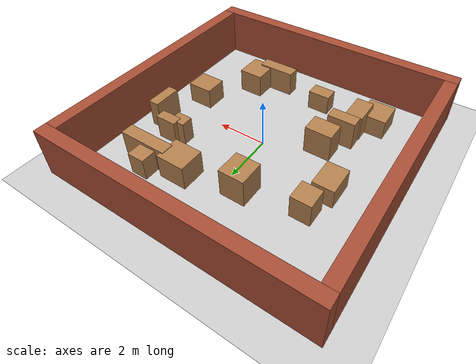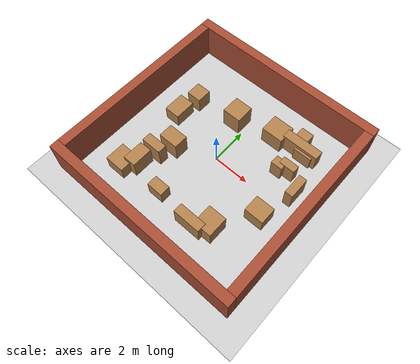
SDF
<?xml version="1.0" ?>
<sdf version="1.6">
  <world name="localization_10m_world">
    <plugin name="gazebo_ros_state" filename="libgazebo_ros_state.so">
      <ros>
        <namespace>/gazebo</namespace>
      </ros>
      <update_rate>20.0</update_rate>
    </plugin>
    <include><uri>model://sun</uri></include>
    <include><uri>model://ground_plane</uri></include>
    <model name="localization_maze">
      <pose>0 0 0 0 0 0</pose>
      <static>true</static>
      <link name="obs_0">
        <pose>0.000 5.250 1.000 0 0 0</pose>
        <collision name="col_0"><geometry><box><size>11.000 0.500 2.000</size></box></geometry></collision>
        <visual name="vis_0"><geometry><box><size>11.000 0.500 2.000</size></box></geometry><material><script><name>Gazebo/Bricks</name></script></material></visual>
      </link>
      <link name="obs_1">
        <pose>0.000 -5.250 1.000 0 0 0</pose>
        <collision name="col_1"><geometry><box><size>11.000 0.500 2.000</size></box></geometry></collision>
        <visual name="vis_1"><geometry><box><size>11.000 0.500 2.000</size></box></geometry><material><script><name>Gazebo/Bricks</name></script></material></visual>
      </link>
      <link name="obs_2">
        <pose>-5.250 0.000 1.000 0 0 0</pose>
        <collision name="col_2"><geometry><box><size>0.500 10.000 2.000</size></box></geometry></collision>
        <visual name="vis_2"><geometry><box><size>0.500 10.000 2.000</size></box></geometry><material><script><name>Gazebo/Bricks</name></script></material></visual>
      </link>
      <link name="obs_3">
        <pose>5.250 0.000 1.000 0 0 0</pose>
        <collision name="col_3"><geometry><box><size>0.500 10.000 2.000</size></box></geometry></collision>
        <visual name="vis_3"><geometry><box><size>0.500 10.000 2.000</size></box></geometry><material><script><name>Gazebo/Bricks</name></script></material></visual>
      </link>
      <link name="obs_4">
        <pose>3.000 3.000 0.515 0 0 0</pose>
        <collision name="col_4"><geometry><box><size>2.000 0.500 1.030</size></box></geometry></collision>
        <visual name="vis_4"><geometry><box><size>2.000 0.500 1.030</size></box></geometry><material><script><name>Gazebo/Wood</name></script></material></visual>
      </link>
      <link name="obs_5">
        <pose>-3.000 2.000 0.481 0 0 0</pose>
        <collision name="col_5"><geometry><box><size>0.800 0.800 0.962</size></box></geometry></collision>
        <visual name="vis_5"><geometry><box><size>0.800 0.800 0.962</size></box></geometry><material><script><name>Gazebo/Wood</name></script></material></visual>
      </link>
      <link name="obs_6">
        <pose>1.500 -3.500 0.529 0 0 0</pose>
        <collision name="col_6"><geometry><box><size>1.500 0.500 1.058</size></box></geometry></collision>
        <visual name="vis_6"><geometry><box><size>1.500 0.500 1.058</size></box></geometry><material><script><name>Gazebo/Wood</name></script></material></visual>
      </link>
      <link name="obs_7">
        <pose>-0.670 2.406 0.580 0 0 0</pose>
        <collision name="col_7"><geometry><box><size>1.011 1.013 1.159</size></box></geometry></collision>
        <visual name="vis_7"><geometry><box><size>1.011 1.013 1.159</size></box></geometry><material><script><name>Gazebo/Wood</name></script></material></visual>
      </link>
      <link name="obs_8">
        <pose>-3.241 0.768 0.400 0 0 0</pose>
        <collision name="col_8"><geometry><box><size>0.848 1.151 0.801</size></box></geometry></collision>
        <visual name="vis_8"><geometry><box><size>0.848 1.151 0.801</size></box></geometry><material><script><name>Gazebo/Wood</name></script></material></visual>
      </link>
      <link name="obs_9">
        <pose>-2.411 -1.832 0.599 0 0 0</pose>
        <collision name="col_9"><geometry><box><size>1.109 0.495 1.198</size></box></geometry></collision>
        <visual name="vis_9"><geometry><box><size>1.109 0.495 1.198</size></box></geometry><material><script><name>Gazebo/Wood</name></script></material></visual>
      </link>
      <link name="obs_10">
        <pose>1.539 2.930 0.500 0 0 0</pose>
        <collision name="col_10"><geometry><box><size>1.153 1.010 1.001</size></box></geometry></collision>
        <visual name="vis_10"><geometry><box><size>1.153 1.010 1.001</size></box></geometry><material><script><name>Gazebo/Wood</name></script></material></visual>
      </link>
      <link name="obs_11">
        <pose>4.152 0.893 0.574 0 0 0</pose>
        <collision name="col_11"><geometry><box><size>0.424 1.137 1.148</size></box></geometry></collision>
        <visual name="vis_11"><geometry><box><size>0.424 1.137 1.148</size></box></geometry><material><script><name>Gazebo/Wood</name></script></material></visual>
      </link>
      <link name="obs_12">
        <pose>2.748 3.320 0.453 0 0 0</pose>
        <collision name="col_12"><geometry><box><size>0.696 1.051 0.906</size></box></geometry></collision>
        <visual name="vis_12"><geometry><box><size>0.696 1.051 0.906</size></box></geometry><material><script><name>Gazebo/Wood</name></script></material></visual>
      </link>
      <link name="obs_13">
        <pose>-0.774 -3.236 0.412 0 0 0</pose>
        <collision name="col_13"><geometry><box><size>0.883 0.563 0.823</size></box></geometry></collision>
        <visual name="vis_13"><geometry><box><size>0.883 0.563 0.823</size></box></geometry><material><script><name>Gazebo/Wood</name></script></material></visual>
      </link>
      <link name="obs_14">
        <pose>-2.012 -0.928 0.578 0 0 0</pose>
        <collision name="col_14"><geometry><box><size>1.068 0.770 1.157</size></box></geometry></collision>
        <visual name="vis_14"><geometry><box><size>1.068 0.770 1.157</size></box></geometry><material><script><name>Gazebo/Wood</name></script></material></visual>
      </link>
      <link name="obs_15">
        <pose>-3.196 -3.315 0.411 0 0 0</pose>
        <collision name="col_15"><geometry><box><size>1.059 1.070 0.821</size></box></geometry></collision>
        <visual name="vis_15"><geometry><box><size>1.059 1.070 0.821</size></box></geometry><material><script><name>Gazebo/Wood</name></script></material></visual>
      </link>
      <link name="obs_16">
        <pose>3.296 2.830 0.410 0 0 0</pose>
        <collision name="col_16"><geometry><box><size>0.975 0.420 0.821</size></box></geometry></collision>
        <visual name="vis_16"><geometry><box><size>0.975 0.420 0.821</size></box></geometry><material><script><name>Gazebo/Wood</name></script></material></visual>
      </link>
      <link name="obs_17">
        <pose>2.771 1.452 0.489 0 0 0</pose>
        <collision name="col_17"><geometry><box><size>0.616 0.484 0.979</size></box></geometry></collision>
        <visual name="vis_17"><geometry><box><size>0.616 0.484 0.979</size></box></geometry><material><script><name>Gazebo/Wood</name></script></material></visual>
      </link>
      <link name="obs_18">
        <pose>3.192 1.662 0.500 0 0 0</pose>
        <collision name="col_18"><geometry><box><size>0.852 0.412 1.000</size></box></geometry></collision>
        <visual name="vis_18"><geometry><box><size>0.852 0.412 1.000</size></box></geometry><material><script><name>Gazebo/Wood</name></script></material></visual>
      </link>
      <link name="obs_19">
        <pose>-2.646 -2.763 0.533 0 0 0</pose>
        <collision name="col_19"><geometry><box><size>0.684 1.120 1.065</size></box></geometry></collision>
        <visual name="vis_19"><geometry><box><size>0.684 1.120 1.065</size></box></geometry><material><script><name>Gazebo/Wood</name></script></material></visual>
      </link>
      <link name="obs_20">
        <pose>2.265 -2.988 0.498 0 0 0</pose>
        <collision name="col_20"><geometry><box><size>0.994 1.087 0.996</size></box></geometry></collision>
        <visual name="vis_20"><geometry><box><size>0.994 1.087 0.996</size></box></geometry><material><script><name>Gazebo/Wood</name></script></material></visual>
      </link>
      <link name="obs_21">
        <pose>3.574 -1.036 0.441 0 0 0</pose>
        <collision name="col_21"><geometry><box><size>1.030 0.903 0.882</size></box></geometry></collision>
        <visual name="vis_21"><geometry><box><size>1.030 0.903 0.882</size></box></geometry><material><script><name>Gazebo/Wood</name></script></material></visual>
      </link>
    </model>
  </world>
</sdf>
